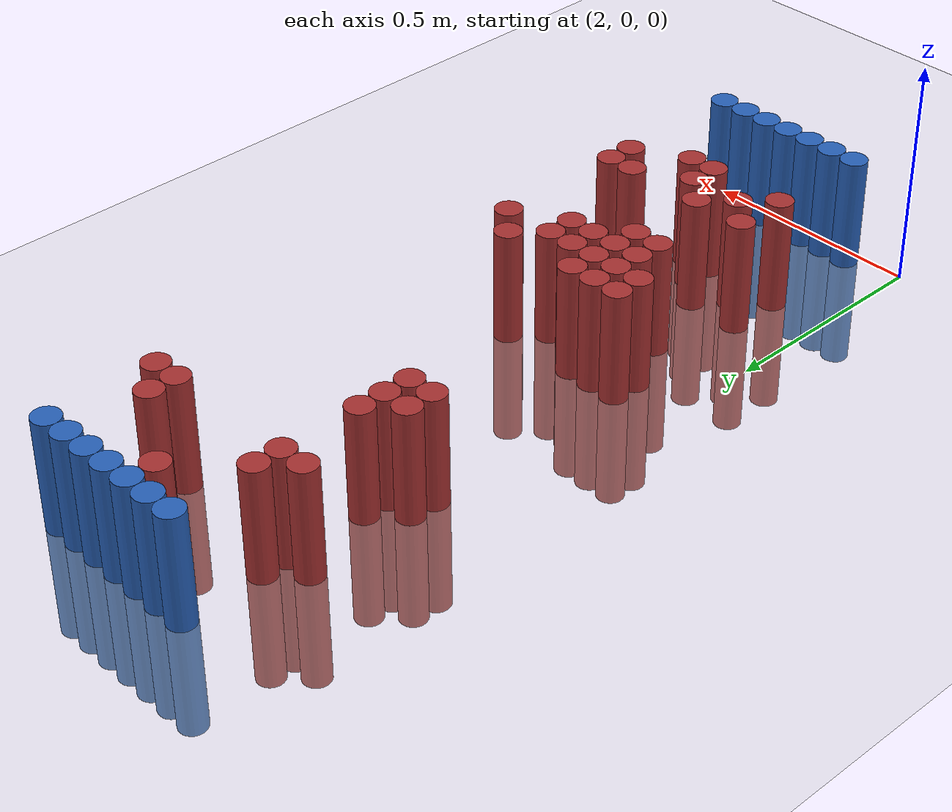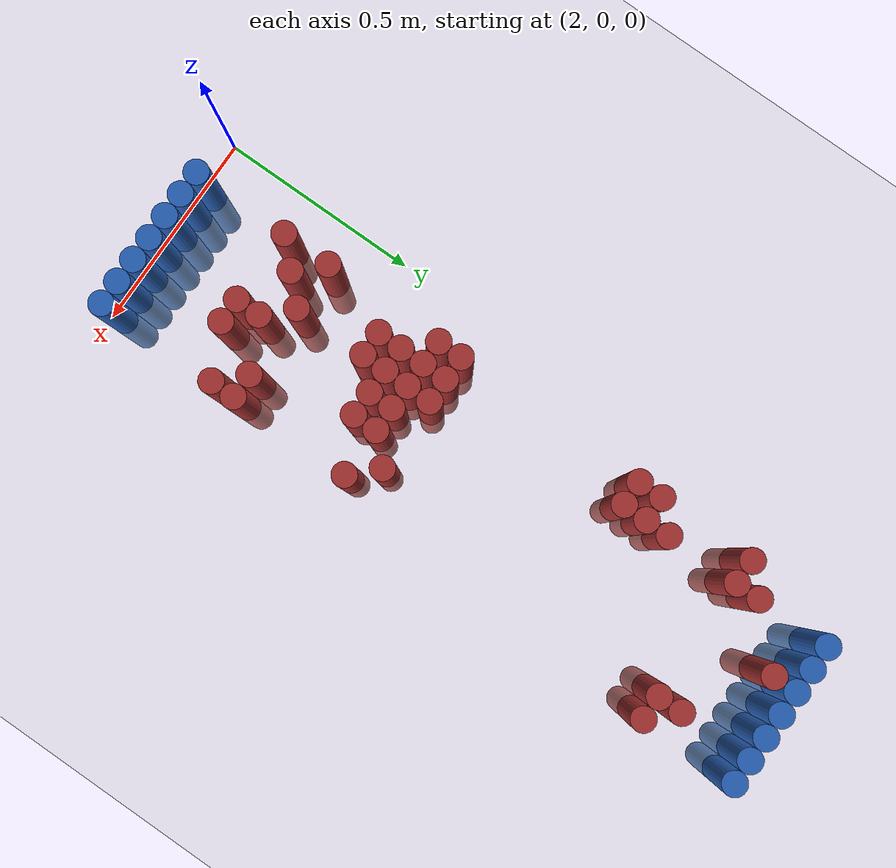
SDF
<sdf version="1.6">
 <world name="default">
  <model name="ground_plane">
   <static>1</static>
   <link name="link">
    <collision name="collision">
     <geometry><plane><normal>0 0 1</normal><size>100 100</size></plane></geometry>
     <surface><friction><ode><mu>100</mu><mu2>50</mu2></ode></friction></surface>
    </collision>
    <visual name="visual">
     <cast_shadows>0</cast_shadows>
     <geometry><plane><normal>0 0 1</normal><size>100 100</size></plane></geometry>
     <material>
      <script><uri>file://media/materials/scripts/gazebo.material</uri><name>Gazebo/Grey</name></script>
     </material>
    </visual>
   </link>
  </model>
  <model name="unit_cylinder_97">
   <static>1</static>
   <pose>2.190000 1.770000 0.000000 0.000000 0.000000 0.000000</pose>
   <link name="link">
    <inertial>
     <mass>1</mass>
     <inertia><ixx>0.145833</ixx><ixy>0</ixy><ixz>0</ixz><iyy>0.145833</iyy><iyz>0</iyz><izz>0.125</izz></inertia>
    </inertial>
    <collision name="collision">
     <geometry><cylinder><radius>0.030000</radius><length>0.5</length></cylinder></geometry>
    </collision>
    <visual name="visual">
     <geometry><cylinder><radius>0.030000</radius><length>0.5</length></cylinder></geometry>
     <material>
      <ambient>0.152000 0.379000 0.720000 1</ambient>
      <diffuse>0.152000 0.379000 0.720000 1</diffuse>
     </material>
     <material>
      <script><name>Gazebo/Grey</name><uri>file://media/materials/scripts/gazebo.material</uri></script>
     </material>
    </visual>
   </link>
  </model>
  <model name="unit_cylinder_98">
   <static>1</static>
   <pose>2.250000 1.770000 0.000000 0.000000 0.000000 0.000000</pose>
   <link name="link">
    <inertial>
     <mass>1</mass>
     <inertia><ixx>0.145833</ixx><ixy>0</ixy><ixz>0</ixz><iyy>0.145833</iyy><iyz>0</iyz><izz>0.125</izz></inertia>
    </inertial>
    <collision name="collision">
     <geometry><cylinder><radius>0.030000</radius><length>0.5</length></cylinder></geometry>
    </collision>
    <visual name="visual">
     <geometry><cylinder><radius>0.030000</radius><length>0.5</length></cylinder></geometry>
     <material>
      <ambient>0.152000 0.379000 0.720000 1</ambient>
      <diffuse>0.152000 0.379000 0.720000 1</diffuse>
     </material>
     <material>
      <script><name>Gazebo/Grey</name><uri>file://media/materials/scripts/gazebo.material</uri></script>
     </material>
    </visual>
   </link>
  </model>
  <model name="unit_cylinder_99">
   <static>1</static>
   <pose>2.310000 1.770000 0.000000 0.000000 0.000000 0.000000</pose>
   <link name="link">
    <inertial>
     <mass>1</mass>
     <inertia><ixx>0.145833</ixx><ixy>0</ixy><ixz>0</ixz><iyy>0.145833</iyy><iyz>0</iyz><izz>0.125</izz></inertia>
    </inertial>
    <collision name="collision">
     <geometry><cylinder><radius>0.030000</radius><length>0.5</length></cylinder></geometry>
    </collision>
    <visual name="visual">
     <geometry><cylinder><radius>0.030000</radius><length>0.5</length></cylinder></geometry>
     <material>
      <ambient>0.152000 0.379000 0.720000 1</ambient>
      <diffuse>0.152000 0.379000 0.720000 1</diffuse>
     </material>
     <material>
      <script><name>Gazebo/Grey</name><uri>file://media/materials/scripts/gazebo.material</uri></script>
     </material>
    </visual>
   </link>
  </model>
  <model name="unit_cylinder_100">
   <static>1</static>
   <pose>2.370000 1.770000 0.000000 0.000000 0.000000 0.000000</pose>
   <link name="link">
    <inertial>
     <mass>1</mass>
     <inertia><ixx>0.145833</ixx><ixy>0</ixy><ixz>0</ixz><iyy>0.145833</iyy><iyz>0</iyz><izz>0.125</izz></inertia>
    </inertial>
    <collision name="collision">
     <geometry><cylinder><radius>0.030000</radius><length>0.5</length></cylinder></geometry>
    </collision>
    <visual name="visual">
     <geometry><cylinder><radius>0.030000</radius><length>0.5</length></cylinder></geometry>
     <material>
      <ambient>0.152000 0.379000 0.720000 1</ambient>
      <diffuse>0.152000 0.379000 0.720000 1</diffuse>
     </material>
     <material>
      <script><name>Gazebo/Grey</name><uri>file://media/materials/scripts/gazebo.material</uri></script>
     </material>
    </visual>
   </link>
  </model>
  <model name="unit_cylinder_101">
   <static>1</static>
   <pose>2.430000 1.770000 0.000000 0.000000 0.000000 0.000000</pose>
   <link name="link">
    <inertial>
     <mass>1</mass>
     <inertia><ixx>0.145833</ixx><ixy>0</ixy><ixz>0</ixz><iyy>0.145833</iyy><iyz>0</iyz><izz>0.125</izz></inertia>
    </inertial>
    <collision name="collision">
     <geometry><cylinder><radius>0.030000</radius><length>0.5</length></cylinder></geometry>
    </collision>
    <visual name="visual">
     <geometry><cylinder><radius>0.030000</radius><length>0.5</length></cylinder></geometry>
     <material>
      <ambient>0.152000 0.379000 0.720000 1</ambient>
      <diffuse>0.152000 0.379000 0.720000 1</diffuse>
     </material>
     <material>
      <script><name>Gazebo/Grey</name><uri>file://media/materials/scripts/gazebo.material</uri></script>
     </material>
    </visual>
   </link>
  </model>
  <model name="unit_cylinder_102">
   <static>1</static>
   <pose>2.490000 1.770000 0.000000 0.000000 0.000000 0.000000</pose>
   <link name="link">
    <inertial>
     <mass>1</mass>
     <inertia><ixx>0.145833</ixx><ixy>0</ixy><ixz>0</ixz><iyy>0.145833</iyy><iyz>0</iyz><izz>0.125</izz></inertia>
    </inertial>
    <collision name="collision">
     <geometry><cylinder><radius>0.030000</radius><length>0.5</length></cylinder></geometry>
    </collision>
    <visual name="visual">
     <geometry><cylinder><radius>0.030000</radius><length>0.5</length></cylinder></geometry>
     <material>
      <ambient>0.152000 0.379000 0.720000 1</ambient>
      <diffuse>0.152000 0.379000 0.720000 1</diffuse>
     </material>
     <material>
      <script><name>Gazebo/Grey</name><uri>file://media/materials/scripts/gazebo.material</uri></script>
     </material>
    </visual>
   </link>
  </model>
  <model name="unit_cylinder_103">
   <static>1</static>
   <pose>2.550000 1.770000 0.000000 0.000000 0.000000 0.000000</pose>
   <link name="link">
    <inertial>
     <mass>1</mass>
     <inertia><ixx>0.145833</ixx><ixy>0</ixy><ixz>0</ixz><iyy>0.145833</iyy><iyz>0</iyz><izz>0.125</izz></inertia>
    </inertial>
    <collision name="collision">
     <geometry><cylinder><radius>0.030000</radius><length>0.5</length></cylinder></geometry>
    </collision>
    <visual name="visual">
     <geometry><cylinder><radius>0.030000</radius><length>0.5</length></cylinder></geometry>
     <material>
      <ambient>0.152000 0.379000 0.720000 1</ambient>
      <diffuse>0.152000 0.379000 0.720000 1</diffuse>
     </material>
     <material>
      <script><name>Gazebo/Grey</name><uri>file://media/materials/scripts/gazebo.material</uri></script>
     </material>
    </visual>
   </link>
  </model>
  <model name="unit_cylinder_126">
   <static>1</static>
   <pose>2.310000 1.710000 0.000000 0.000000 0.000000 0.000000</pose>
   <link name="link">
    <inertial>
     <mass>1</mass>
     <inertia><ixx>0.145833</ixx><ixy>0</ixy><ixz>0</ixz><iyy>0.145833</iyy><iyz>0</iyz><izz>0.125</izz></inertia>
    </inertial>
    <collision name="collision">
     <geometry><cylinder><radius>0.030000</radius><length>0.5</length></cylinder></geometry>
    </collision>
    <visual name="visual">
     <geometry><cylinder><radius>0.030000</radius><length>0.5</length></cylinder></geometry>
     <material>
      <ambient>0.648000 0.192000 0.192000 1</ambient>
      <diffuse>0.648000 0.192000 0.192000 1</diffuse>
     </material>
     <material>
      <script><name>Gazebo/Grey</name><uri>file://media/materials/scripts/gazebo.material</uri></script>
     </material>
    </visual>
   </link>
  </model>
  <model name="unit_cylinder_139">
   <static>1</static>
   <pose>2.190000 1.590000 0.000000 0.000000 0.000000 0.000000</pose>
   <link name="link">
    <inertial>
     <mass>1</mass>
     <inertia><ixx>0.145833</ixx><ixy>0</ixy><ixz>0</ixz><iyy>0.145833</iyy><iyz>0</iyz><izz>0.125</izz></inertia>
    </inertial>
    <collision name="collision">
     <geometry><cylinder><radius>0.030000</radius><length>0.5</length></cylinder></geometry>
    </collision>
    <visual name="visual">
     <geometry><cylinder><radius>0.030000</radius><length>0.5</length></cylinder></geometry>
     <material>
      <ambient>0.648000 0.192000 0.192000 1</ambient>
      <diffuse>0.648000 0.192000 0.192000 1</diffuse>
     </material>
     <material>
      <script><name>Gazebo/Grey</name><uri>file://media/materials/scripts/gazebo.material</uri></script>
     </material>
    </visual>
   </link>
  </model>
  <model name="unit_cylinder_140">
   <static>1</static>
   <pose>2.490000 1.590000 0.000000 0.000000 0.000000 0.000000</pose>
   <link name="link">
    <inertial>
     <mass>1</mass>
     <inertia><ixx>0.145833</ixx><ixy>0</ixy><ixz>0</ixz><iyy>0.145833</iyy><iyz>0</iyz><izz>0.125</izz></inertia>
    </inertial>
    <collision name="collision">
     <geometry><cylinder><radius>0.030000</radius><length>0.5</length></cylinder></geometry>
    </collision>
    <visual name="visual">
     <geometry><cylinder><radius>0.030000</radius><length>0.5</length></cylinder></geometry>
     <material>
      <ambient>0.648000 0.192000 0.192000 1</ambient>
      <diffuse>0.648000 0.192000 0.192000 1</diffuse>
     </material>
     <material>
      <script><name>Gazebo/Grey</name><uri>file://media/materials/scripts/gazebo.material</uri></script>
     </material>
    </visual>
   </link>
  </model>
  <model name="unit_cylinder_147">
   <static>1</static>
   <pose>2.130000 1.530000 0.000000 0.000000 0.000000 0.000000</pose>
   <link name="link">
    <inertial>
     <mass>1</mass>
     <inertia><ixx>0.145833</ixx><ixy>0</ixy><ixz>0</ixz><iyy>0.145833</iyy><iyz>0</iyz><izz>0.125</izz></inertia>
    </inertial>
    <collision name="collision">
     <geometry><cylinder><radius>0.030000</radius><length>0.5</length></cylinder></geometry>
    </collision>
    <visual name="visual">
     <geometry><cylinder><radius>0.030000</radius><length>0.5</length></cylinder></geometry>
     <material>
      <ambient>0.648000 0.192000 0.192000 1</ambient>
      <diffuse>0.648000 0.192000 0.192000 1</diffuse>
     </material>
     <material>
      <script><name>Gazebo/Grey</name><uri>file://media/materials/scripts/gazebo.material</uri></script>
     </material>
    </visual>
   </link>
  </model>
  <model name="unit_cylinder_148">
   <static>1</static>
   <pose>2.190000 1.530000 0.000000 0.000000 0.000000 0.000000</pose>
   <link name="link">
    <inertial>
     <mass>1</mass>
     <inertia><ixx>0.145833</ixx><ixy>0</ixy><ixz>0</ixz><iyy>0.145833</iyy><iyz>0</iyz><izz>0.125</izz></inertia>
    </inertial>
    <collision name="collision">
     <geometry><cylinder><radius>0.030000</radius><length>0.5</length></cylinder></geometry>
    </collision>
    <visual name="visual">
     <geometry><cylinder><radius>0.030000</radius><length>0.5</length></cylinder></geometry>
     <material>
      <ambient>0.648000 0.192000 0.192000 1</ambient>
      <diffuse>0.648000 0.192000 0.192000 1</diffuse>
     </material>
     <material>
      <script><name>Gazebo/Grey</name><uri>file://media/materials/scripts/gazebo.material</uri></script>
     </material>
    </visual>
   </link>
  </model>
  <model name="unit_cylinder_149">
   <static>1</static>
   <pose>2.490000 1.530000 0.000000 0.000000 0.000000 0.000000</pose>
   <link name="link">
    <inertial>
     <mass>1</mass>
     <inertia><ixx>0.145833</ixx><ixy>0</ixy><ixz>0</ixz><iyy>0.145833</iyy><iyz>0</iyz><izz>0.125</izz></inertia>
    </inertial>
    <collision name="collision">
     <geometry><cylinder><radius>0.030000</radius><length>0.5</length></cylinder></geometry>
    </collision>
    <visual name="visual">
     <geometry><cylinder><radius>0.030000</radius><length>0.5</length></cylinder></geometry>
     <material>
      <ambient>0.648000 0.192000 0.192000 1</ambient>
      <diffuse>0.648000 0.192000 0.192000 1</diffuse>
     </material>
     <material>
      <script><name>Gazebo/Grey</name><uri>file://media/materials/scripts/gazebo.material</uri></script>
     </material>
    </visual>
   </link>
  </model>
  <model name="unit_cylinder_150">
   <static>1</static>
   <pose>2.550000 1.530000 0.000000 0.000000 0.000000 0.000000</pose>
   <link name="link">
    <inertial>
     <mass>1</mass>
     <inertia><ixx>0.145833</ixx><ixy>0</ixy><ixz>0</ixz><iyy>0.145833</iyy><iyz>0</iyz><izz>0.125</izz></inertia>
    </inertial>
    <collision name="collision">
     <geometry><cylinder><radius>0.030000</radius><length>0.5</length></cylinder></geometry>
    </collision>
    <visual name="visual">
     <geometry><cylinder><radius>0.030000</radius><length>0.5</length></cylinder></geometry>
     <material>
      <ambient>0.648000 0.192000 0.192000 1</ambient>
      <diffuse>0.648000 0.192000 0.192000 1</diffuse>
     </material>
     <material>
      <script><name>Gazebo/Grey</name><uri>file://media/materials/scripts/gazebo.material</uri></script>
     </material>
    </visual>
   </link>
  </model>
  <model name="unit_cylinder_169">
   <static>1</static>
   <pose>2.190000 1.350000 0.000000 0.000000 0.000000 0.000000</pose>
   <link name="link">
    <inertial>
     <mass>1</mass>
     <inertia><ixx>0.145833</ixx><ixy>0</ixy><ixz>0</ixz><iyy>0.145833</iyy><iyz>0</iyz><izz>0.125</izz></inertia>
    </inertial>
    <collision name="collision">
     <geometry><cylinder><radius>0.030000</radius><length>0.5</length></cylinder></geometry>
    </collision>
    <visual name="visual">
     <geometry><cylinder><radius>0.030000</radius><length>0.5</length></cylinder></geometry>
     <material>
      <ambient>0.648000 0.192000 0.192000 1</ambient>
      <diffuse>0.648000 0.192000 0.192000 1</diffuse>
     </material>
     <material>
      <script><name>Gazebo/Grey</name><uri>file://media/materials/scripts/gazebo.material</uri></script>
     </material>
    </visual>
   </link>
  </model>
  <model name="unit_cylinder_174">
   <static>1</static>
   <pose>2.130000 1.290000 0.000000 0.000000 0.000000 0.000000</pose>
   <link name="link">
    <inertial>
     <mass>1</mass>
     <inertia><ixx>0.145833</ixx><ixy>0</ixy><ixz>0</ixz><iyy>0.145833</iyy><iyz>0</iyz><izz>0.125</izz></inertia>
    </inertial>
    <collision name="collision">
     <geometry><cylinder><radius>0.030000</radius><length>0.5</length></cylinder></geometry>
    </collision>
    <visual name="visual">
     <geometry><cylinder><radius>0.030000</radius><length>0.5</length></cylinder></geometry>
     <material>
      <ambient>0.648000 0.192000 0.192000 1</ambient>
      <diffuse>0.648000 0.192000 0.192000 1</diffuse>
     </material>
     <material>
      <script><name>Gazebo/Grey</name><uri>file://media/materials/scripts/gazebo.material</uri></script>
     </material>
    </visual>
   </link>
  </model>
  <model name="unit_cylinder_175">
   <static>1</static>
   <pose>2.190000 1.290000 0.000000 0.000000 0.000000 0.000000</pose>
   <link name="link">
    <inertial>
     <mass>1</mass>
     <inertia><ixx>0.145833</ixx><ixy>0</ixy><ixz>0</ixz><iyy>0.145833</iyy><iyz>0</iyz><izz>0.125</izz></inertia>
    </inertial>
    <collision name="collision">
     <geometry><cylinder><radius>0.030000</radius><length>0.5</length></cylinder></geometry>
    </collision>
    <visual name="visual">
     <geometry><cylinder><radius>0.030000</radius><length>0.5</length></cylinder></geometry>
     <material>
      <ambient>0.648000 0.192000 0.192000 1</ambient>
      <diffuse>0.648000 0.192000 0.192000 1</diffuse>
     </material>
     <material>
      <script><name>Gazebo/Grey</name><uri>file://media/materials/scripts/gazebo.material</uri></script>
     </material>
    </visual>
   </link>
  </model>
  <model name="unit_cylinder_181">
   <static>1</static>
   <pose>2.130000 1.230000 0.000000 0.000000 0.000000 0.000000</pose>
   <link name="link">
    <inertial>
     <mass>1</mass>
     <inertia><ixx>0.145833</ixx><ixy>0</ixy><ixz>0</ixz><iyy>0.145833</iyy><iyz>0</iyz><izz>0.125</izz></inertia>
    </inertial>
    <collision name="collision">
     <geometry><cylinder><radius>0.030000</radius><length>0.5</length></cylinder></geometry>
    </collision>
    <visual name="visual">
     <geometry><cylinder><radius>0.030000</radius><length>0.5</length></cylinder></geometry>
     <material>
      <ambient>0.648000 0.192000 0.192000 1</ambient>
      <diffuse>0.648000 0.192000 0.192000 1</diffuse>
     </material>
     <material>
      <script><name>Gazebo/Grey</name><uri>file://media/materials/scripts/gazebo.material</uri></script>
     </material>
    </visual>
   </link>
  </model>
  <model name="unit_cylinder_182">
   <static>1</static>
   <pose>2.190000 1.230000 0.000000 0.000000 0.000000 0.000000</pose>
   <link name="link">
    <inertial>
     <mass>1</mass>
     <inertia><ixx>0.145833</ixx><ixy>0</ixy><ixz>0</ixz><iyy>0.145833</iyy><iyz>0</iyz><izz>0.125</izz></inertia>
    </inertial>
    <collision name="collision">
     <geometry><cylinder><radius>0.030000</radius><length>0.5</length></cylinder></geometry>
    </collision>
    <visual name="visual">
     <geometry><cylinder><radius>0.030000</radius><length>0.5</length></cylinder></geometry>
     <material>
      <ambient>0.648000 0.192000 0.192000 1</ambient>
      <diffuse>0.648000 0.192000 0.192000 1</diffuse>
     </material>
     <material>
      <script><name>Gazebo/Grey</name><uri>file://media/materials/scripts/gazebo.material</uri></script>
     </material>
    </visual>
   </link>
  </model>
  <model name="unit_cylinder_199">
   <static>1</static>
   <pose>2.130000 0.750000 0.000000 0.000000 0.000000 0.000000</pose>
   <link name="link">
    <inertial>
     <mass>1</mass>
     <inertia><ixx>0.145833</ixx><ixy>0</ixy><ixz>0</ixz><iyy>0.145833</iyy><iyz>0</iyz><izz>0.125</izz></inertia>
    </inertial>
    <collision name="collision">
     <geometry><cylinder><radius>0.030000</radius><length>0.5</length></cylinder></geometry>
    </collision>
    <visual name="visual">
     <geometry><cylinder><radius>0.030000</radius><length>0.5</length></cylinder></geometry>
     <material>
      <ambient>0.648000 0.192000 0.192000 1</ambient>
      <diffuse>0.648000 0.192000 0.192000 1</diffuse>
     </material>
     <material>
      <script><name>Gazebo/Grey</name><uri>file://media/materials/scripts/gazebo.material</uri></script>
     </material>
    </visual>
   </link>
  </model>
  <model name="unit_cylinder_200">
   <static>1</static>
   <pose>2.190000 0.750000 0.000000 0.000000 0.000000 0.000000</pose>
   <link name="link">
    <inertial>
     <mass>1</mass>
     <inertia><ixx>0.145833</ixx><ixy>0</ixy><ixz>0</ixz><iyy>0.145833</iyy><iyz>0</iyz><izz>0.125</izz></inertia>
    </inertial>
    <collision name="collision">
     <geometry><cylinder><radius>0.030000</radius><length>0.5</length></cylinder></geometry>
    </collision>
    <visual name="visual">
     <geometry><cylinder><radius>0.030000</radius><length>0.5</length></cylinder></geometry>
     <material>
      <ambient>0.648000 0.192000 0.192000 1</ambient>
      <diffuse>0.648000 0.192000 0.192000 1</diffuse>
     </material>
     <material>
      <script><name>Gazebo/Grey</name><uri>file://media/materials/scripts/gazebo.material</uri></script>
     </material>
    </visual>
   </link>
  </model>
  <model name="unit_cylinder_201">
   <static>1</static>
   <pose>2.250000 0.750000 0.000000 0.000000 0.000000 0.000000</pose>
   <link name="link">
    <inertial>
     <mass>1</mass>
     <inertia><ixx>0.145833</ixx><ixy>0</ixy><ixz>0</ixz><iyy>0.145833</iyy><iyz>0</iyz><izz>0.125</izz></inertia>
    </inertial>
    <collision name="collision">
     <geometry><cylinder><radius>0.030000</radius><length>0.5</length></cylinder></geometry>
    </collision>
    <visual name="visual">
     <geometry><cylinder><radius>0.030000</radius><length>0.5</length></cylinder></geometry>
     <material>
      <ambient>0.648000 0.192000 0.192000 1</ambient>
      <diffuse>0.648000 0.192000 0.192000 1</diffuse>
     </material>
     <material>
      <script><name>Gazebo/Grey</name><uri>file://media/materials/scripts/gazebo.material</uri></script>
     </material>
    </visual>
   </link>
  </model>
  <model name="unit_cylinder_202">
   <static>1</static>
   <pose>2.430000 0.750000 0.000000 0.000000 0.000000 0.000000</pose>
   <link name="link">
    <inertial>
     <mass>1</mass>
     <inertia><ixx>0.145833</ixx><ixy>0</ixy><ixz>0</ixz><iyy>0.145833</iyy><iyz>0</iyz><izz>0.125</izz></inertia>
    </inertial>
    <collision name="collision">
     <geometry><cylinder><radius>0.030000</radius><length>0.5</length></cylinder></geometry>
    </collision>
    <visual name="visual">
     <geometry><cylinder><radius>0.030000</radius><length>0.5</length></cylinder></geometry>
     <material>
      <ambient>0.648000 0.192000 0.192000 1</ambient>
      <diffuse>0.648000 0.192000 0.192000 1</diffuse>
     </material>
     <material>
      <script><name>Gazebo/Grey</name><uri>file://media/materials/scripts/gazebo.material</uri></script>
     </material>
    </visual>
   </link>
  </model>
  <model name="unit_cylinder_206">
   <static>1</static>
   <pose>2.130000 0.690000 0.000000 0.000000 0.000000 0.000000</pose>
   <link name="link">
    <inertial>
     <mass>1</mass>
     <inertia><ixx>0.145833</ixx><ixy>0</ixy><ixz>0</ixz><iyy>0.145833</iyy><iyz>0</iyz><izz>0.125</izz></inertia>
    </inertial>
    <collision name="collision">
     <geometry><cylinder><radius>0.030000</radius><length>0.5</length></cylinder></geometry>
    </collision>
    <visual name="visual">
     <geometry><cylinder><radius>0.030000</radius><length>0.5</length></cylinder></geometry>
     <material>
      <ambient>0.648000 0.192000 0.192000 1</ambient>
      <diffuse>0.648000 0.192000 0.192000 1</diffuse>
     </material>
     <material>
      <script><name>Gazebo/Grey</name><uri>file://media/materials/scripts/gazebo.material</uri></script>
     </material>
    </visual>
   </link>
  </model>
  <model name="unit_cylinder_207">
   <static>1</static>
   <pose>2.190000 0.690000 0.000000 0.000000 0.000000 0.000000</pose>
   <link name="link">
    <inertial>
     <mass>1</mass>
     <inertia><ixx>0.145833</ixx><ixy>0</ixy><ixz>0</ixz><iyy>0.145833</iyy><iyz>0</iyz><izz>0.125</izz></inertia>
    </inertial>
    <collision name="collision">
     <geometry><cylinder><radius>0.030000</radius><length>0.5</length></cylinder></geometry>
    </collision>
    <visual name="visual">
     <geometry><cylinder><radius>0.030000</radius><length>0.5</length></cylinder></geometry>
     <material>
      <ambient>0.648000 0.192000 0.192000 1</ambient>
      <diffuse>0.648000 0.192000 0.192000 1</diffuse>
     </material>
     <material>
      <script><name>Gazebo/Grey</name><uri>file://media/materials/scripts/gazebo.material</uri></script>
     </material>
    </visual>
   </link>
  </model>
  <model name="unit_cylinder_208">
   <static>1</static>
   <pose>2.250000 0.690000 0.000000 0.000000 0.000000 0.000000</pose>
   <link name="link">
    <inertial>
     <mass>1</mass>
     <inertia><ixx>0.145833</ixx><ixy>0</ixy><ixz>0</ixz><iyy>0.145833</iyy><iyz>0</iyz><izz>0.125</izz></inertia>
    </inertial>
    <collision name="collision">
     <geometry><cylinder><radius>0.030000</radius><length>0.5</length></cylinder></geometry>
    </collision>
    <visual name="visual">
     <geometry><cylinder><radius>0.030000</radius><length>0.5</length></cylinder></geometry>
     <material>
      <ambient>0.648000 0.192000 0.192000 1</ambient>
      <diffuse>0.648000 0.192000 0.192000 1</diffuse>
     </material>
     <material>
      <script><name>Gazebo/Grey</name><uri>file://media/materials/scripts/gazebo.material</uri></script>
     </material>
    </visual>
   </link>
  </model>
  <model name="unit_cylinder_209">
   <static>1</static>
   <pose>2.310000 0.690000 0.000000 0.000000 0.000000 0.000000</pose>
   <link name="link">
    <inertial>
     <mass>1</mass>
     <inertia><ixx>0.145833</ixx><ixy>0</ixy><ixz>0</ixz><iyy>0.145833</iyy><iyz>0</iyz><izz>0.125</izz></inertia>
    </inertial>
    <collision name="collision">
     <geometry><cylinder><radius>0.030000</radius><length>0.5</length></cylinder></geometry>
    </collision>
    <visual name="visual">
     <geometry><cylinder><radius>0.030000</radius><length>0.5</length></cylinder></geometry>
     <material>
      <ambient>0.648000 0.192000 0.192000 1</ambient>
      <diffuse>0.648000 0.192000 0.192000 1</diffuse>
     </material>
     <material>
      <script><name>Gazebo/Grey</name><uri>file://media/materials/scripts/gazebo.material</uri></script>
     </material>
    </visual>
   </link>
  </model>
  <model name="unit_cylinder_210">
   <static>1</static>
   <pose>2.370000 0.690000 0.000000 0.000000 0.000000 0.000000</pose>
   <link name="link">
    <inertial>
     <mass>1</mass>
     <inertia><ixx>0.145833</ixx><ixy>0</ixy><ixz>0</ixz><iyy>0.145833</iyy><iyz>0</iyz><izz>0.125</izz></inertia>
    </inertial>
    <collision name="collision">
     <geometry><cylinder><radius>0.030000</radius><length>0.5</length></cylinder></geometry>
    </collision>
    <visual name="visual">
     <geometry><cylinder><radius>0.030000</radius><length>0.5</length></cylinder></geometry>
     <material>
      <ambient>0.648000 0.192000 0.192000 1</ambient>
      <diffuse>0.648000 0.192000 0.192000 1</diffuse>
     </material>
     <material>
      <script><name>Gazebo/Grey</name><uri>file://media/materials/scripts/gazebo.material</uri></script>
     </material>
    </visual>
   </link>
  </model>
  <model name="unit_cylinder_211">
   <static>1</static>
   <pose>2.490000 0.690000 0.000000 0.000000 0.000000 0.000000</pose>
   <link name="link">
    <inertial>
     <mass>1</mass>
     <inertia><ixx>0.145833</ixx><ixy>0</ixy><ixz>0</ixz><iyy>0.145833</iyy><iyz>0</iyz><izz>0.125</izz></inertia>
    </inertial>
    <collision name="collision">
     <geometry><cylinder><radius>0.030000</radius><length>0.5</length></cylinder></geometry>
    </collision>
    <visual name="visual">
     <geometry><cylinder><radius>0.030000</radius><length>0.5</length></cylinder></geometry>
     <material>
      <ambient>0.648000 0.192000 0.192000 1</ambient>
      <diffuse>0.648000 0.192000 0.192000 1</diffuse>
     </material>
     <material>
      <script><name>Gazebo/Grey</name><uri>file://media/materials/scripts/gazebo.material</uri></script>
     </material>
    </visual>
   </link>
  </model>
  <model name="unit_cylinder_214">
   <static>1</static>
   <pose>2.190000 0.630000 0.000000 0.000000 0.000000 0.000000</pose>
   <link name="link">
    <inertial>
     <mass>1</mass>
     <inertia><ixx>0.145833</ixx><ixy>0</ixy><ixz>0</ixz><iyy>0.145833</iyy><iyz>0</iyz><izz>0.125</izz></inertia>
    </inertial>
    <collision name="collision">
     <geometry><cylinder><radius>0.030000</radius><length>0.5</length></cylinder></geometry>
    </collision>
    <visual name="visual">
     <geometry><cylinder><radius>0.030000</radius><length>0.5</length></cylinder></geometry>
     <material>
      <ambient>0.648000 0.192000 0.192000 1</ambient>
      <diffuse>0.648000 0.192000 0.192000 1</diffuse>
     </material>
     <material>
      <script><name>Gazebo/Grey</name><uri>file://media/materials/scripts/gazebo.material</uri></script>
     </material>
    </visual>
   </link>
  </model>
  <model name="unit_cylinder_215">
   <static>1</static>
   <pose>2.250000 0.630000 0.000000 0.000000 0.000000 0.000000</pose>
   <link name="link">
    <inertial>
     <mass>1</mass>
     <inertia><ixx>0.145833</ixx><ixy>0</ixy><ixz>0</ixz><iyy>0.145833</iyy><iyz>0</iyz><izz>0.125</izz></inertia>
    </inertial>
    <collision name="collision">
     <geometry><cylinder><radius>0.030000</radius><length>0.5</length></cylinder></geometry>
    </collision>
    <visual name="visual">
     <geometry><cylinder><radius>0.030000</radius><length>0.5</length></cylinder></geometry>
     <material>
      <ambient>0.648000 0.192000 0.192000 1</ambient>
      <diffuse>0.648000 0.192000 0.192000 1</diffuse>
     </material>
     <material>
      <script><name>Gazebo/Grey</name><uri>file://media/materials/scripts/gazebo.material</uri></script>
     </material>
    </visual>
   </link>
  </model>
  <model name="unit_cylinder_216">
   <static>1</static>
   <pose>2.310000 0.630000 0.000000 0.000000 0.000000 0.000000</pose>
   <link name="link">
    <inertial>
     <mass>1</mass>
     <inertia><ixx>0.145833</ixx><ixy>0</ixy><ixz>0</ixz><iyy>0.145833</iyy><iyz>0</iyz><izz>0.125</izz></inertia>
    </inertial>
    <collision name="collision">
     <geometry><cylinder><radius>0.030000</radius><length>0.5</length></cylinder></geometry>
    </collision>
    <visual name="visual">
     <geometry><cylinder><radius>0.030000</radius><length>0.5</length></cylinder></geometry>
     <material>
      <ambient>0.648000 0.192000 0.192000 1</ambient>
      <diffuse>0.648000 0.192000 0.192000 1</diffuse>
     </material>
     <material>
      <script><name>Gazebo/Grey</name><uri>file://media/materials/scripts/gazebo.material</uri></script>
     </material>
    </visual>
   </link>
  </model>
  <model name="unit_cylinder_217">
   <static>1</static>
   <pose>2.370000 0.630000 0.000000 0.000000 0.000000 0.000000</pose>
   <link name="link">
    <inertial>
     <mass>1</mass>
     <inertia><ixx>0.145833</ixx><ixy>0</ixy><ixz>0</ixz><iyy>0.145833</iyy><iyz>0</iyz><izz>0.125</izz></inertia>
    </inertial>
    <collision name="collision">
     <geometry><cylinder><radius>0.030000</radius><length>0.5</length></cylinder></geometry>
    </collision>
    <visual name="visual">
     <geometry><cylinder><radius>0.030000</radius><length>0.5</length></cylinder></geometry>
     <material>
      <ambient>0.648000 0.192000 0.192000 1</ambient>
      <diffuse>0.648000 0.192000 0.192000 1</diffuse>
     </material>
     <material>
      <script><name>Gazebo/Grey</name><uri>file://media/materials/scripts/gazebo.material</uri></script>
     </material>
    </visual>
   </link>
  </model>
  <model name="unit_cylinder_222">
   <static>1</static>
   <pose>2.190000 0.570000 0.000000 0.000000 0.000000 0.000000</pose>
   <link name="link">
    <inertial>
     <mass>1</mass>
     <inertia><ixx>0.145833</ixx><ixy>0</ixy><ixz>0</ixz><iyy>0.145833</iyy><iyz>0</iyz><izz>0.125</izz></inertia>
    </inertial>
    <collision name="collision">
     <geometry><cylinder><radius>0.030000</radius><length>0.5</length></cylinder></geometry>
    </collision>
    <visual name="visual">
     <geometry><cylinder><radius>0.030000</radius><length>0.5</length></cylinder></geometry>
     <material>
      <ambient>0.648000 0.192000 0.192000 1</ambient>
      <diffuse>0.648000 0.192000 0.192000 1</diffuse>
     </material>
     <material>
      <script><name>Gazebo/Grey</name><uri>file://media/materials/scripts/gazebo.material</uri></script>
     </material>
    </visual>
   </link>
  </model>
  <model name="unit_cylinder_223">
   <static>1</static>
   <pose>2.250000 0.570000 0.000000 0.000000 0.000000 0.000000</pose>
   <link name="link">
    <inertial>
     <mass>1</mass>
     <inertia><ixx>0.145833</ixx><ixy>0</ixy><ixz>0</ixz><iyy>0.145833</iyy><iyz>0</iyz><izz>0.125</izz></inertia>
    </inertial>
    <collision name="collision">
     <geometry><cylinder><radius>0.030000</radius><length>0.5</length></cylinder></geometry>
    </collision>
    <visual name="visual">
     <geometry><cylinder><radius>0.030000</radius><length>0.5</length></cylinder></geometry>
     <material>
      <ambient>0.648000 0.192000 0.192000 1</ambient>
      <diffuse>0.648000 0.192000 0.192000 1</diffuse>
     </material>
     <material>
      <script><name>Gazebo/Grey</name><uri>file://media/materials/scripts/gazebo.material</uri></script>
     </material>
    </visual>
   </link>
  </model>
  <model name="unit_cylinder_234">
   <static>1</static>
   <pose>2.130000 0.390000 0.000000 0.000000 0.000000 0.000000</pose>
   <link name="link">
    <inertial>
     <mass>1</mass>
     <inertia><ixx>0.145833</ixx><ixy>0</ixy><ixz>0</ixz><iyy>0.145833</iyy><iyz>0</iyz><izz>0.125</izz></inertia>
    </inertial>
    <collision name="collision">
     <geometry><cylinder><radius>0.030000</radius><length>0.5</length></cylinder></geometry>
    </collision>
    <visual name="visual">
     <geometry><cylinder><radius>0.030000</radius><length>0.5</length></cylinder></geometry>
     <material>
      <ambient>0.648000 0.192000 0.192000 1</ambient>
      <diffuse>0.648000 0.192000 0.192000 1</diffuse>
     </material>
     <material>
      <script><name>Gazebo/Grey</name><uri>file://media/materials/scripts/gazebo.material</uri></script>
     </material>
    </visual>
   </link>
  </model>
  <model name="unit_cylinder_235">
   <static>1</static>
   <pose>2.250000 0.390000 0.000000 0.000000 0.000000 0.000000</pose>
   <link name="link">
    <inertial>
     <mass>1</mass>
     <inertia><ixx>0.145833</ixx><ixy>0</ixy><ixz>0</ixz><iyy>0.145833</iyy><iyz>0</iyz><izz>0.125</izz></inertia>
    </inertial>
    <collision name="collision">
     <geometry><cylinder><radius>0.030000</radius><length>0.5</length></cylinder></geometry>
    </collision>
    <visual name="visual">
     <geometry><cylinder><radius>0.030000</radius><length>0.5</length></cylinder></geometry>
     <material>
      <ambient>0.648000 0.192000 0.192000 1</ambient>
      <diffuse>0.648000 0.192000 0.192000 1</diffuse>
     </material>
     <material>
      <script><name>Gazebo/Grey</name><uri>file://media/materials/scripts/gazebo.material</uri></script>
     </material>
    </visual>
   </link>
  </model>
  <model name="unit_cylinder_236">
   <static>1</static>
   <pose>2.430000 0.390000 0.000000 0.000000 0.000000 0.000000</pose>
   <link name="link">
    <inertial>
     <mass>1</mass>
     <inertia><ixx>0.145833</ixx><ixy>0</ixy><ixz>0</ixz><iyy>0.145833</iyy><iyz>0</iyz><izz>0.125</izz></inertia>
    </inertial>
    <collision name="collision">
     <geometry><cylinder><radius>0.030000</radius><length>0.5</length></cylinder></geometry>
    </collision>
    <visual name="visual">
     <geometry><cylinder><radius>0.030000</radius><length>0.5</length></cylinder></geometry>
     <material>
      <ambient>0.648000 0.192000 0.192000 1</ambient>
      <diffuse>0.648000 0.192000 0.192000 1</diffuse>
     </material>
     <material>
      <script><name>Gazebo/Grey</name><uri>file://media/materials/scripts/gazebo.material</uri></script>
     </material>
    </visual>
   </link>
  </model>
  <model name="unit_cylinder_237">
   <static>1</static>
   <pose>2.490000 0.390000 0.000000 0.000000 0.000000 0.000000</pose>
   <link name="link">
    <inertial>
     <mass>1</mass>
     <inertia><ixx>0.145833</ixx><ixy>0</ixy><ixz>0</ixz><iyy>0.145833</iyy><iyz>0</iyz><izz>0.125</izz></inertia>
    </inertial>
    <collision name="collision">
     <geometry><cylinder><radius>0.030000</radius><length>0.5</length></cylinder></geometry>
    </collision>
    <visual name="visual">
     <geometry><cylinder><radius>0.030000</radius><length>0.5</length></cylinder></geometry>
     <material>
      <ambient>0.648000 0.192000 0.192000 1</ambient>
      <diffuse>0.648000 0.192000 0.192000 1</diffuse>
     </material>
     <material>
      <script><name>Gazebo/Grey</name><uri>file://media/materials/scripts/gazebo.material</uri></script>
     </material>
    </visual>
   </link>
  </model>
  <model name="unit_cylinder_245">
   <static>1</static>
   <pose>2.190000 0.330000 0.000000 0.000000 0.000000 0.000000</pose>
   <link name="link">
    <inertial>
     <mass>1</mass>
     <inertia><ixx>0.145833</ixx><ixy>0</ixy><ixz>0</ixz><iyy>0.145833</iyy><iyz>0</iyz><izz>0.125</izz></inertia>
    </inertial>
    <collision name="collision">
     <geometry><cylinder><radius>0.030000</radius><length>0.5</length></cylinder></geometry>
    </collision>
    <visual name="visual">
     <geometry><cylinder><radius>0.030000</radius><length>0.5</length></cylinder></geometry>
     <material>
      <ambient>0.648000 0.192000 0.192000 1</ambient>
      <diffuse>0.648000 0.192000 0.192000 1</diffuse>
     </material>
     <material>
      <script><name>Gazebo/Grey</name><uri>file://media/materials/scripts/gazebo.material</uri></script>
     </material>
    </visual>
   </link>
  </model>
  <model name="unit_cylinder_246">
   <static>1</static>
   <pose>2.310000 0.330000 0.000000 0.000000 0.000000 0.000000</pose>
   <link name="link">
    <inertial>
     <mass>1</mass>
     <inertia><ixx>0.145833</ixx><ixy>0</ixy><ixz>0</ixz><iyy>0.145833</iyy><iyz>0</iyz><izz>0.125</izz></inertia>
    </inertial>
    <collision name="collision">
     <geometry><cylinder><radius>0.030000</radius><length>0.5</length></cylinder></geometry>
    </collision>
    <visual name="visual">
     <geometry><cylinder><radius>0.030000</radius><length>0.5</length></cylinder></geometry>
     <material>
      <ambient>0.648000 0.192000 0.192000 1</ambient>
      <diffuse>0.648000 0.192000 0.192000 1</diffuse>
     </material>
     <material>
      <script><name>Gazebo/Grey</name><uri>file://media/materials/scripts/gazebo.material</uri></script>
     </material>
    </visual>
   </link>
  </model>
  <model name="unit_cylinder_247">
   <static>1</static>
   <pose>2.490000 0.330000 0.000000 0.000000 0.000000 0.000000</pose>
   <link name="link">
    <inertial>
     <mass>1</mass>
     <inertia><ixx>0.145833</ixx><ixy>0</ixy><ixz>0</ixz><iyy>0.145833</iyy><iyz>0</iyz><izz>0.125</izz></inertia>
    </inertial>
    <collision name="collision">
     <geometry><cylinder><radius>0.030000</radius><length>0.5</length></cylinder></geometry>
    </collision>
    <visual name="visual">
     <geometry><cylinder><radius>0.030000</radius><length>0.5</length></cylinder></geometry>
     <material>
      <ambient>0.648000 0.192000 0.192000 1</ambient>
      <diffuse>0.648000 0.192000 0.192000 1</diffuse>
     </material>
     <material>
      <script><name>Gazebo/Grey</name><uri>file://media/materials/scripts/gazebo.material</uri></script>
     </material>
    </visual>
   </link>
  </model>
  <model name="unit_cylinder_250">
   <static>1</static>
   <pose>2.130000 0.270000 0.000000 0.000000 0.000000 0.000000</pose>
   <link name="link">
    <inertial>
     <mass>1</mass>
     <inertia><ixx>0.145833</ixx><ixy>0</ixy><ixz>0</ixz><iyy>0.145833</iyy><iyz>0</iyz><izz>0.125</izz></inertia>
    </inertial>
    <collision name="collision">
     <geometry><cylinder><radius>0.030000</radius><length>0.5</length></cylinder></geometry>
    </collision>
    <visual name="visual">
     <geometry><cylinder><radius>0.030000</radius><length>0.5</length></cylinder></geometry>
     <material>
      <ambient>0.648000 0.192000 0.192000 1</ambient>
      <diffuse>0.648000 0.192000 0.192000 1</diffuse>
     </material>
     <material>
      <script><name>Gazebo/Grey</name><uri>file://media/materials/scripts/gazebo.material</uri></script>
     </material>
    </visual>
   </link>
  </model>
  <model name="unit_cylinder_251">
   <static>1</static>
   <pose>2.310000 0.270000 0.000000 0.000000 0.000000 0.000000</pose>
   <link name="link">
    <inertial>
     <mass>1</mass>
     <inertia><ixx>0.145833</ixx><ixy>0</ixy><ixz>0</ixz><iyy>0.145833</iyy><iyz>0</iyz><izz>0.125</izz></inertia>
    </inertial>
    <collision name="collision">
     <geometry><cylinder><radius>0.030000</radius><length>0.5</length></cylinder></geometry>
    </collision>
    <visual name="visual">
     <geometry><cylinder><radius>0.030000</radius><length>0.5</length></cylinder></geometry>
     <material>
      <ambient>0.648000 0.192000 0.192000 1</ambient>
      <diffuse>0.648000 0.192000 0.192000 1</diffuse>
     </material>
     <material>
      <script><name>Gazebo/Grey</name><uri>file://media/materials/scripts/gazebo.material</uri></script>
     </material>
    </visual>
   </link>
  </model>
  <model name="unit_cylinder_252">
   <static>1</static>
   <pose>2.370000 0.270000 0.000000 0.000000 0.000000 0.000000</pose>
   <link name="link">
    <inertial>
     <mass>1</mass>
     <inertia><ixx>0.145833</ixx><ixy>0</ixy><ixz>0</ixz><iyy>0.145833</iyy><iyz>0</iyz><izz>0.125</izz></inertia>
    </inertial>
    <collision name="collision">
     <geometry><cylinder><radius>0.030000</radius><length>0.5</length></cylinder></geometry>
    </collision>
    <visual name="visual">
     <geometry><cylinder><radius>0.030000</radius><length>0.5</length></cylinder></geometry>
     <material>
      <ambient>0.648000 0.192000 0.192000 1</ambient>
      <diffuse>0.648000 0.192000 0.192000 1</diffuse>
     </material>
     <material>
      <script><name>Gazebo/Grey</name><uri>file://media/materials/scripts/gazebo.material</uri></script>
     </material>
    </visual>
   </link>
  </model>
  <model name="unit_cylinder_280">
   <static>1</static>
   <pose>2.130000 0.030000 0.000000 0.000000 0.000000 0.000000</pose>
   <link name="link">
    <inertial>
     <mass>1</mass>
     <inertia><ixx>0.145833</ixx><ixy>0</ixy><ixz>0</ixz><iyy>0.145833</iyy><iyz>0</iyz><izz>0.125</izz></inertia>
    </inertial>
    <collision name="collision">
     <geometry><cylinder><radius>0.030000</radius><length>0.5</length></cylinder></geometry>
    </collision>
    <visual name="visual">
     <geometry><cylinder><radius>0.030000</radius><length>0.5</length></cylinder></geometry>
     <material>
      <ambient>0.152000 0.379000 0.720000 1</ambient>
      <diffuse>0.152000 0.379000 0.720000 1</diffuse>
     </material>
     <material>
      <script><name>Gazebo/Grey</name><uri>file://media/materials/scripts/gazebo.material</uri></script>
     </material>
    </visual>
   </link>
  </model>
  <model name="unit_cylinder_281">
   <static>1</static>
   <pose>2.190000 0.030000 0.000000 0.000000 0.000000 0.000000</pose>
   <link name="link">
    <inertial>
     <mass>1</mass>
     <inertia><ixx>0.145833</ixx><ixy>0</ixy><ixz>0</ixz><iyy>0.145833</iyy><iyz>0</iyz><izz>0.125</izz></inertia>
    </inertial>
    <collision name="collision">
     <geometry><cylinder><radius>0.030000</radius><length>0.5</length></cylinder></geometry>
    </collision>
    <visual name="visual">
     <geometry><cylinder><radius>0.030000</radius><length>0.5</length></cylinder></geometry>
     <material>
      <ambient>0.152000 0.379000 0.720000 1</ambient>
      <diffuse>0.152000 0.379000 0.720000 1</diffuse>
     </material>
     <material>
      <script><name>Gazebo/Grey</name><uri>file://media/materials/scripts/gazebo.material</uri></script>
     </material>
    </visual>
   </link>
  </model>
  <model name="unit_cylinder_282">
   <static>1</static>
   <pose>2.250000 0.030000 0.000000 0.000000 0.000000 0.000000</pose>
   <link name="link">
    <inertial>
     <mass>1</mass>
     <inertia><ixx>0.145833</ixx><ixy>0</ixy><ixz>0</ixz><iyy>0.145833</iyy><iyz>0</iyz><izz>0.125</izz></inertia>
    </inertial>
    <collision name="collision">
     <geometry><cylinder><radius>0.030000</radius><length>0.5</length></cylinder></geometry>
    </collision>
    <visual name="visual">
     <geometry><cylinder><radius>0.030000</radius><length>0.5</length></cylinder></geometry>
     <material>
      <ambient>0.152000 0.379000 0.720000 1</ambient>
      <diffuse>0.152000 0.379000 0.720000 1</diffuse>
     </material>
     <material>
      <script><name>Gazebo/Grey</name><uri>file://media/materials/scripts/gazebo.material</uri></script>
     </material>
    </visual>
   </link>
  </model>
  <model name="unit_cylinder_283">
   <static>1</static>
   <pose>2.310000 0.030000 0.000000 0.000000 0.000000 0.000000</pose>
   <link name="link">
    <inertial>
     <mass>1</mass>
     <inertia><ixx>0.145833</ixx><ixy>0</ixy><ixz>0</ixz><iyy>0.145833</iyy><iyz>0</iyz><izz>0.125</izz></inertia>
    </inertial>
    <collision name="collision">
     <geometry><cylinder><radius>0.030000</radius><length>0.5</length></cylinder></geometry>
    </collision>
    <visual name="visual">
     <geometry><cylinder><radius>0.030000</radius><length>0.5</length></cylinder></geometry>
     <material>
      <ambient>0.152000 0.379000 0.720000 1</ambient>
      <diffuse>0.152000 0.379000 0.720000 1</diffuse>
     </material>
     <material>
      <script><name>Gazebo/Grey</name><uri>file://media/materials/scripts/gazebo.material</uri></script>
     </material>
    </visual>
   </link>
  </model>
  <model name="unit_cylinder_284">
   <static>1</static>
   <pose>2.370000 0.030000 0.000000 0.000000 0.000000 0.000000</pose>
   <link name="link">
    <inertial>
     <mass>1</mass>
     <inertia><ixx>0.145833</ixx><ixy>0</ixy><ixz>0</ixz><iyy>0.145833</iyy><iyz>0</iyz><izz>0.125</izz></inertia>
    </inertial>
    <collision name="collision">
     <geometry><cylinder><radius>0.030000</radius><length>0.5</length></cylinder></geometry>
    </collision>
    <visual name="visual">
     <geometry><cylinder><radius>0.030000</radius><length>0.5</length></cylinder></geometry>
     <material>
      <ambient>0.152000 0.379000 0.720000 1</ambient>
      <diffuse>0.152000 0.379000 0.720000 1</diffuse>
     </material>
     <material>
      <script><name>Gazebo/Grey</name><uri>file://media/materials/scripts/gazebo.material</uri></script>
     </material>
    </visual>
   </link>
  </model>
  <model name="unit_cylinder_285">
   <static>1</static>
   <pose>2.430000 0.030000 0.000000 0.000000 0.000000 0.000000</pose>
   <link name="link">
    <inertial>
     <mass>1</mass>
     <inertia><ixx>0.145833</ixx><ixy>0</ixy><ixz>0</ixz><iyy>0.145833</iyy><iyz>0</iyz><izz>0.125</izz></inertia>
    </inertial>
    <collision name="collision">
     <geometry><cylinder><radius>0.030000</radius><length>0.5</length></cylinder></geometry>
    </collision>
    <visual name="visual">
     <geometry><cylinder><radius>0.030000</radius><length>0.5</length></cylinder></geometry>
     <material>
      <ambient>0.152000 0.379000 0.720000 1</ambient>
      <diffuse>0.152000 0.379000 0.720000 1</diffuse>
     </material>
     <material>
      <script><name>Gazebo/Grey</name><uri>file://media/materials/scripts/gazebo.material</uri></script>
     </material>
    </visual>
   </link>
  </model>
  <model name="unit_cylinder_286">
   <static>1</static>
   <pose>2.490000 0.030000 0.000000 0.000000 0.000000 0.000000</pose>
   <link name="link">
    <inertial>
     <mass>1</mass>
     <inertia><ixx>0.145833</ixx><ixy>0</ixy><ixz>0</ixz><iyy>0.145833</iyy><iyz>0</iyz><izz>0.125</izz></inertia>
    </inertial>
    <collision name="collision">
     <geometry><cylinder><radius>0.030000</radius><length>0.5</length></cylinder></geometry>
    </collision>
    <visual name="visual">
     <geometry><cylinder><radius>0.030000</radius><length>0.5</length></cylinder></geometry>
     <material>
      <ambient>0.152000 0.379000 0.720000 1</ambient>
      <diffuse>0.152000 0.379000 0.720000 1</diffuse>
     </material>
     <material>
      <script><name>Gazebo/Grey</name><uri>file://media/materials/scripts/gazebo.material</uri></script>
     </material>
    </visual>
   </link>
  </model>
 </world>
</sdf>
